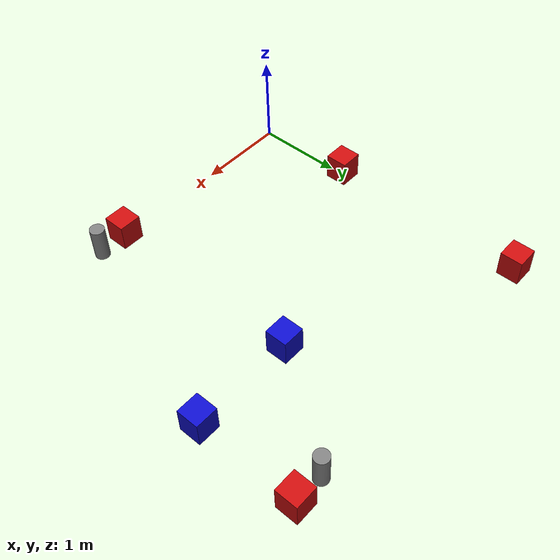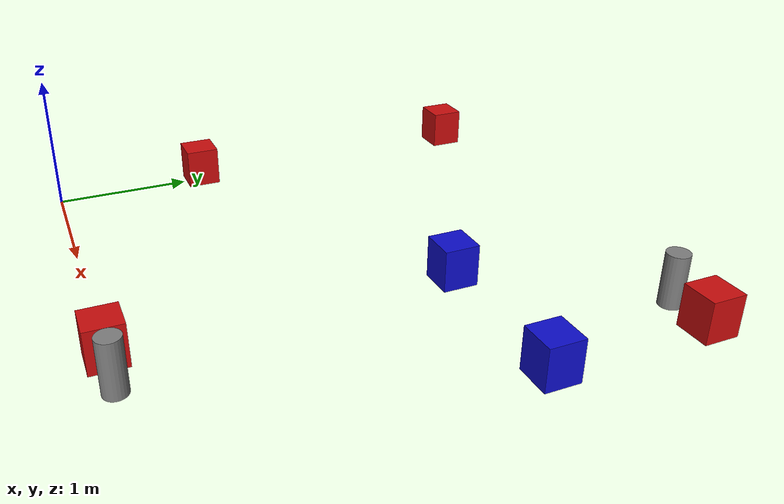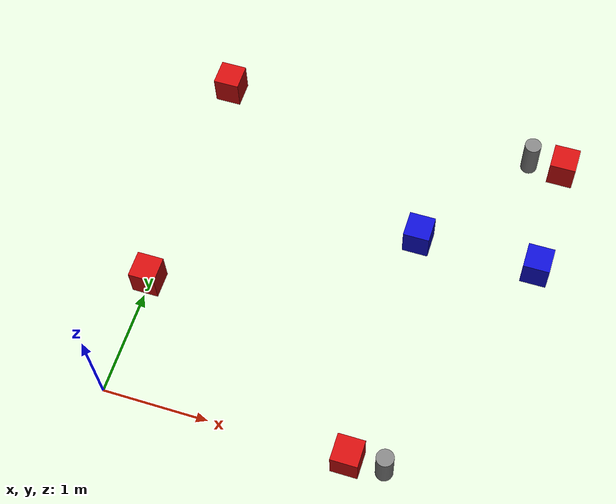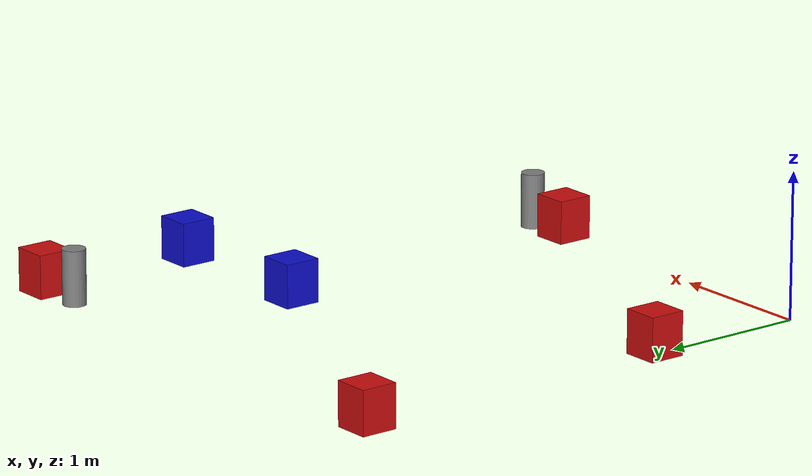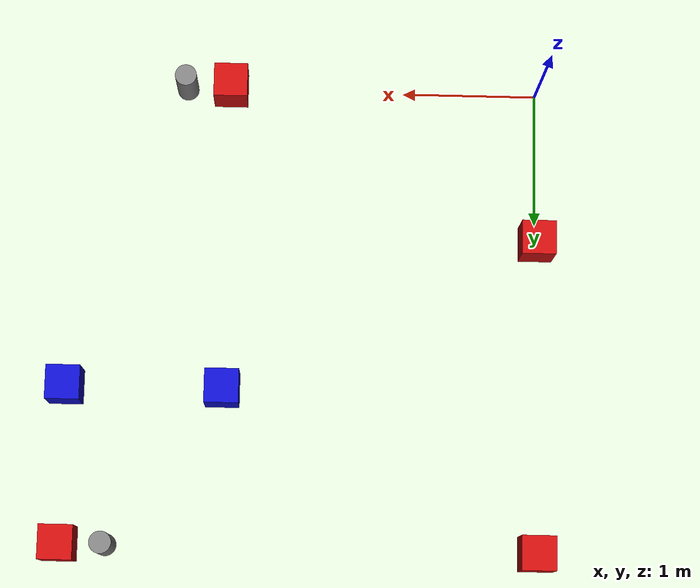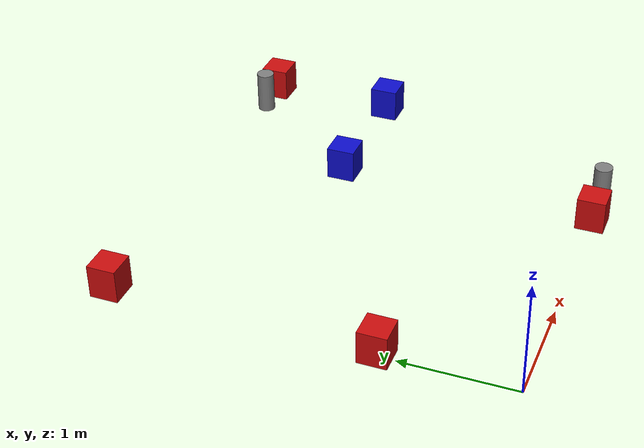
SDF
<sdf version="1.5">
 <world name="tars_borde_ventanas_ancha">
  <include><uri>model://sun</uri></include>
  <model name="senuelo_borde">
   <static>true</static>
   <link name="senuelo_oclusor_0">
    <pose>2.63 0.0 0.19 0 0 0</pose>
    <collision name="collision">
     <geometry><cylinder><radius>0.08</radius><length>0.38</length></cylinder></geometry>
    </collision>
    <visual name="visual">
     <geometry><cylinder><radius>0.08</radius><length>0.38</length></cylinder></geometry>
     <material><ambient>0.5 0.5 0.5 1</ambient><diffuse>0.5 0.5 0.5 1</diffuse></material>
    </visual>
   </link>
   <link name="senuelo_oclusor_1">
    <pose>3.1199999999999997 3.4499999999999997 0.19 0 0 0</pose>
    <collision name="collision">
     <geometry><cylinder><radius>0.08</radius><length>0.38</length></cylinder></geometry>
    </collision>
    <visual name="visual">
     <geometry><cylinder><radius>0.08</radius><length>0.38</length></cylinder></geometry>
     <material><ambient>0.5 0.5 0.5 1</ambient><diffuse>0.5 0.5 0.5 1</diffuse></material>
    </visual>
   </link>
  </model>
  <model name="marcas_color">
   <static>true</static>
   <link name="cuadrado_rojo_1">
    <pose>2.3 0.0 .15 0 0 0</pose>
    <collision name="collision"><geometry><box><size>0.25 0.25 0.3</size></box></geometry></collision>
    <visual name="visual">
     <geometry><box><size>0.25 0.25 0.3</size></box></geometry>
     <material>
      <ambient>0.8 0.05 0.05 1</ambient>
      <diffuse>0.8 0.05 0.05 1</diffuse>
      <specular>0.1 0.1 0.1 1</specular>
     </material>
    </visual>
   </link>
   <link name="cuadrado_rojo_2">
    <pose>3.4499999999999997 3.4499999999999997 .15 0 0 0</pose>
    <collision name="collision"><geometry><box><size>0.25 0.25 0.3</size></box></geometry></collision>
    <visual name="visual">
     <geometry><box><size>0.25 0.25 0.3</size></box></geometry>
     <material>
      <ambient>0.8 0.05 0.05 1</ambient>
      <diffuse>0.8 0.05 0.05 1</diffuse>
      <specular>0.1 0.1 0.1 1</specular>
     </material>
    </visual>
   </link>
   <link name="cuadrado_rojo_3">
    <pose>0.0 1.15 .15 0 0 0</pose>
    <collision name="collision"><geometry><box><size>0.25 0.25 0.3</size></box></geometry></collision>
    <visual name="visual">
     <geometry><box><size>0.25 0.25 0.3</size></box></geometry>
     <material>
      <ambient>0.8 0.05 0.05 1</ambient>
      <diffuse>0.8 0.05 0.05 1</diffuse>
      <specular>0.1 0.1 0.1 1</specular>
     </material>
    </visual>
   </link>
   <link name="cuadrado_rojo_4">
    <pose>0.0 3.4499999999999997 .15 0 0 0</pose>
    <collision name="collision"><geometry><box><size>0.25 0.25 0.3</size></box></geometry></collision>
    <visual name="visual">
     <geometry><box><size>0.25 0.25 0.3</size></box></geometry>
     <material>
      <ambient>0.8 0.05 0.05 1</ambient>
      <diffuse>0.8 0.05 0.05 1</diffuse>
      <specular>0.1 0.1 0.1 1</specular>
     </material>
    </visual>
   </link>
   <link name="cuadrado_azul_1">
    <pose>2.3 2.3 .15 0 0 0</pose>
    <collision name="collision"><geometry><box><size>0.25 0.25 0.3</size></box></geometry></collision>
    <visual name="visual">
     <geometry><box><size>0.25 0.25 0.3</size></box></geometry>
     <material>
      <ambient>0.05 0.05 0.8 1</ambient>
      <diffuse>0.05 0.05 0.8 1</diffuse>
      <specular>0.1 0.1 0.1 1</specular>
     </material>
    </visual>
   </link>
   <link name="cuadrado_azul_2">
    <pose>3.4499999999999997 2.3 .15 0 0 0</pose>
    <collision name="collision"><geometry><box><size>0.25 0.25 0.3</size></box></geometry></collision>
    <visual name="visual">
     <geometry><box><size>0.25 0.25 0.3</size></box></geometry>
     <material>
      <ambient>0.05 0.05 0.8 1</ambient>
      <diffuse>0.05 0.05 0.8 1</diffuse>
      <specular>0.1 0.1 0.1 1</specular>
     </material>
    </visual>
   </link>
  </model>
 </world>
</sdf>
